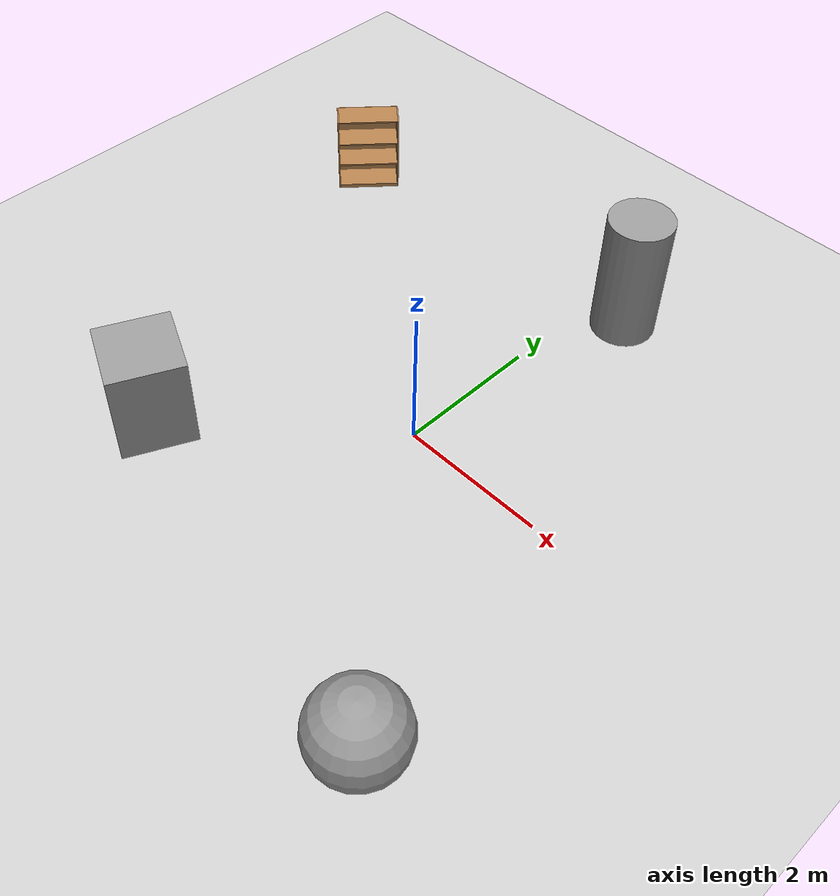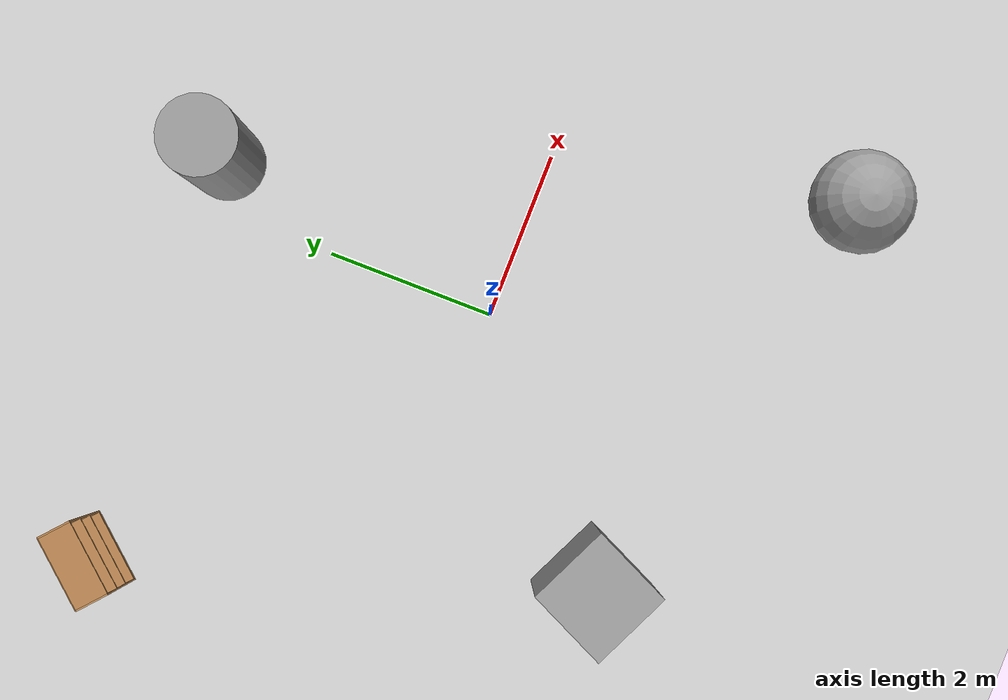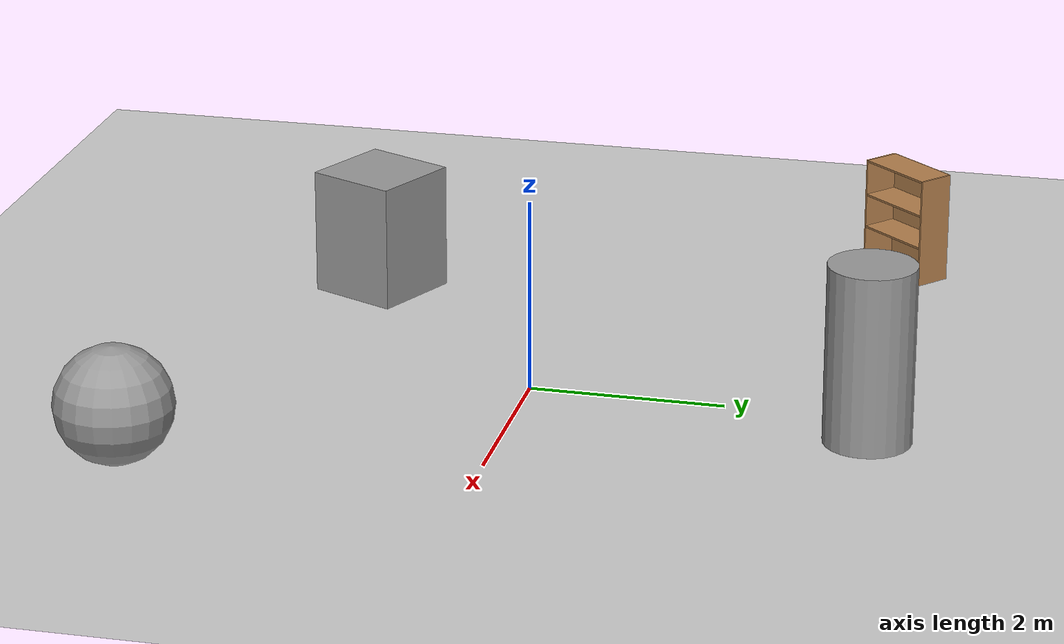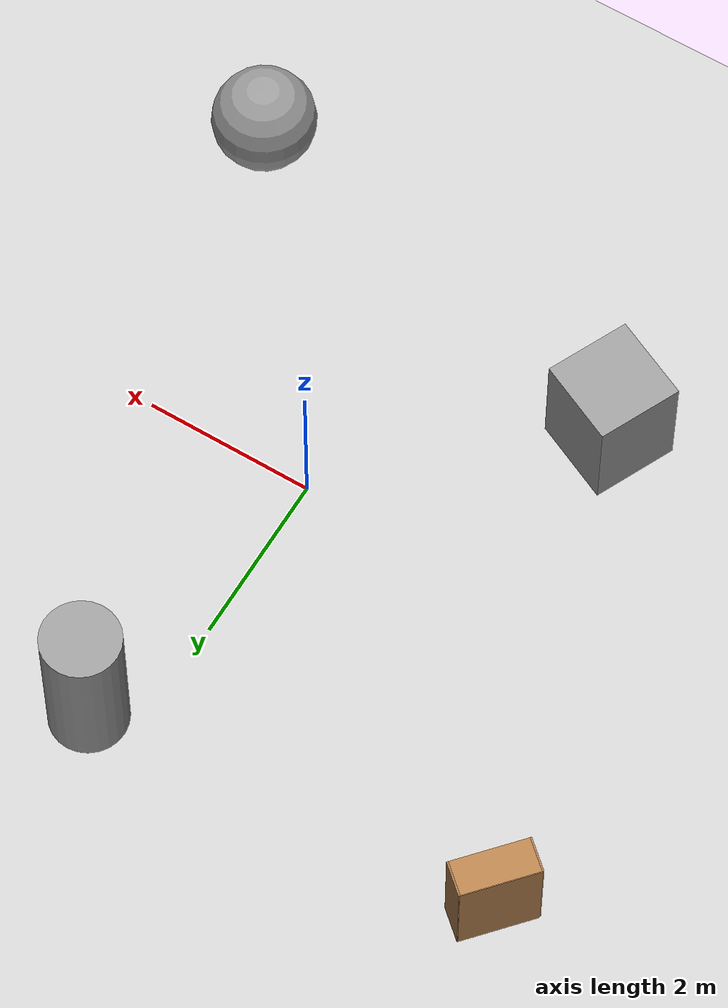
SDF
<sdf version="1.6">
 <world name="default">
  <light name="sun" type="directional">
   <pose>0 0 10 0 -0 0</pose>
   <diffuse>0.8 0.8 0.8 1</diffuse>
   <specular>0.1 0.1 0.1 1</specular>
   <attenuation>
    <range>1000</range>
    <constant>0.9</constant>
    <linear>0.01</linear>
    <quadratic>0.001</quadratic>
   </attenuation>
   <direction>-0.5 0.5 -1</direction>
  </light>
  <model name="ground_plane">
   <static>1</static>
   <link name="link">
    <collision name="collision">
     <geometry><plane><normal>0 0 1</normal><size>100 100</size></plane></geometry>
     <surface><friction><ode><mu>100</mu><mu2>50</mu2></ode></friction></surface>
    </collision>
    <visual name="visual">
     <cast_shadows>0</cast_shadows>
     <geometry><plane><normal>0 0 1</normal><size>100 100</size></plane></geometry>
     <material>
      <script><uri>file://media/materials/scripts/gazebo.material</uri><name>Gazebo/Grey</name></script>
     </material>
    </visual>
   </link>
  </model>
  <gravity>0 0 -9.8</gravity>
  <magnetic_field>6e-06 2.3e-05 -4.2e-05</magnetic_field>
  <atmosphere type="adiabatic"/>
  <physics name="default_physics" default="0" type="ode">
   <max_step_size>0.001</max_step_size>
   <real_time_factor>1</real_time_factor>
   <real_time_update_rate>1000</real_time_update_rate>
  </physics>
  <scene><ambient>0.4 0.4 0.4 1</ambient><background>0.7 0.7 0.7 1</background><shadows>1</shadows></scene>
  <spherical_coordinates>
   <surface_model>EARTH_WGS84</surface_model>
   <latitude_deg>0</latitude_deg>
   <longitude_deg>0</longitude_deg>
   <elevation>0</elevation>
   <heading_deg>0</heading_deg>
  </spherical_coordinates>
  <model name="unit_box_0">
   <pose>-2.49317 -2.24085 0.670121 -1e-06 -0 -0.435364</pose>
   <link name="link">
    <inertial>
     <mass>1</mass>
     <inertia>
      <ixx>0.166667</ixx>
      <ixy>0</ixy>
      <ixz>0</ixz>
      <iyy>0.166667</iyy>
      <iyz>0</iyz>
      <izz>0.166667</izz>
     </inertia>
    </inertial>
    <collision name="collision"><geometry><box><size>1 1 1.34024</size></box></geometry></collision>
    <visual name="visual">
     <geometry><box><size>1 1 1.34024</size></box></geometry>
     <material>
      <script><name>Gazebo/Grey</name><uri>file://media/materials/scripts/gazebo.material</uri></script>
     </material>
    </visual>
   </link>
  </model>
  <model name="unit_sphere_0">
   <pose>2.70467 -3.48131 0.598159 0 -0 0</pose>
   <link name="link">
    <inertial>
     <mass>1</mass>
     <inertia><ixx>0.1</ixx><ixy>0</ixy><ixz>0</ixz><iyy>0.1</iyy><iyz>0</iyz><izz>0.1</izz></inertia>
    </inertial>
    <collision name="collision"><geometry><sphere><radius>0.59816</radius></sphere></geometry></collision>
    <visual name="visual">
     <geometry><sphere><radius>0.59816</radius></sphere></geometry>
     <material>
      <script><name>Gazebo/Grey</name><uri>file://media/materials/scripts/gazebo.material</uri></script>
     </material>
    </visual>
   </link>
  </model>
  <model name="unit_cylinder_0">
   <pose>0.553791 3.5211 0.923268 0 -0 0.820394</pose>
   <link name="link">
    <inertial>
     <mass>1</mass>
     <inertia><ixx>0.145833</ixx><ixy>0</ixy><ixz>0</ixz><iyy>0.145833</iyy><iyz>0</iyz><izz>0.125</izz></inertia>
    </inertial>
    <collision name="collision">
     <geometry><cylinder><radius>0.444573</radius><length>1.84655</length></cylinder></geometry>
    </collision>
    <visual name="visual">
     <geometry><cylinder><radius>0.444573</radius><length>1.84655</length></cylinder></geometry>
     <material>
      <script><name>Gazebo/Grey</name><uri>file://media/materials/scripts/gazebo.material</uri></script>
     </material>
    </visual>
   </link>
  </model>
  <model name="bookshelf">
   <static>1</static>
   <link name="link">
    <inertial><mass>1</mass></inertial>
    <collision name="back">
     <pose>0 0.005 0.6 0 -0 0</pose>
     <geometry><box><size>0.9 0.01 1.2</size></box></geometry>
    </collision>
    <visual name="visual1">
     <pose>0 0.005 0.6 0 -0 0</pose>
     <geometry><box><size>0.9 0.01 1.2</size></box></geometry>
     <material>
      <script><uri>file://media/materials/scripts/gazebo.material</uri><name>Gazebo/Wood</name></script>
     </material>
    </visual>
    <collision name="left_side">
     <pose>0.45 -0.195 0.6 0 -0 0</pose>
     <geometry><box><size>0.02 0.4 1.2</size></box></geometry>
    </collision>
    <visual name="visual2">
     <pose>0.45 -0.195 0.6 0 -0 0</pose>
     <geometry><box><size>0.02 0.4 1.2</size></box></geometry>
     <material>
      <script><uri>file://media/materials/scripts/gazebo.material</uri><name>Gazebo/Wood</name></script>
     </material>
    </visual>
    <collision name="right_side">
     <pose>-0.45 -0.195 0.6 0 -0 0</pose>
     <geometry><box><size>0.02 0.4 1.2</size></box></geometry>
    </collision>
    <visual name="visual3">
     <pose>-0.45 -0.195 0.6 0 -0 0</pose>
     <geometry><box><size>0.02 0.4 1.2</size></box></geometry>
     <material>
      <script><uri>file://media/materials/scripts/gazebo.material</uri><name>Gazebo/Wood</name></script>
     </material>
    </visual>
    <collision name="bottom">
     <pose>0 -0.195 0.03 0 -0 0</pose>
     <geometry><box><size>0.88 0.4 0.06</size></box></geometry>
    </collision>
    <visual name="visual4">
     <pose>0 -0.195 0.03 0 -0 0</pose>
     <geometry><box><size>0.88 0.4 0.06</size></box></geometry>
     <material>
      <script><uri>file://media/materials/scripts/gazebo.material</uri><name>Gazebo/Wood</name></script>
     </material>
    </visual>
    <collision name="top">
     <pose>0 -0.195 1.19 0 -0 0</pose>
     <geometry><box><size>0.88 0.4 0.02</size></box></geometry>
    </collision>
    <visual name="visual5">
     <pose>0 -0.195 1.19 0 -0 0</pose>
     <geometry><box><size>0.88 0.4 0.02</size></box></geometry>
     <material>
      <script><uri>file://media/materials/scripts/gazebo.material</uri><name>Gazebo/Wood</name></script>
     </material>
    </visual>
    <collision name="low_shelf">
     <pose>0 -0.195 0.43 0 -0 0</pose>
     <geometry><box><size>0.88 0.4 0.02</size></box></geometry>
    </collision>
    <visual name="visual6">
     <pose>0 -0.195 0.43 0 -0 0</pose>
     <geometry><box><size>0.88 0.4 0.02</size></box></geometry>
     <material>
      <script><uri>file://media/materials/scripts/gazebo.material</uri><name>Gazebo/Wood</name></script>
     </material>
    </visual>
    <collision name="high_shelf">
     <pose>0 -0.195 0.8 0 -0 0</pose>
     <geometry><box><size>0.88 0.4 0.02</size></box></geometry>
    </collision>
    <visual name="visual7">
     <pose>0 -0.195 0.8 0 -0 0</pose>
     <geometry><box><size>0.88 0.4 0.02</size></box></geometry>
     <material>
      <script><uri>file://media/materials/scripts/gazebo.material</uri><name>Gazebo/Wood</name></script>
     </material>
    </visual>
   </link>
   <pose>-4.41817 3.36884 0 0 -0 0.854411</pose>
  </model>
 </world>
</sdf>
